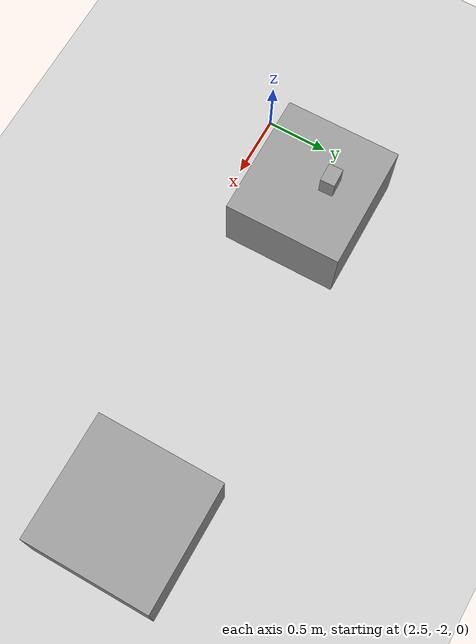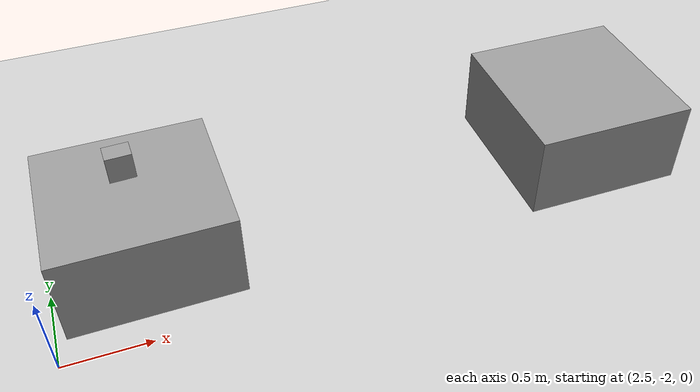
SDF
<sdf version="1.7">
 <world name="default">
  <light name="sun" type="directional">
   <pose>0 0 10 0 -0 0</pose>
   <diffuse>0.8 0.8 0.8 1</diffuse>
   <specular>0.2 0.2 0.2 1</specular>
   <attenuation>
    <range>1000</range>
    <constant>0.9</constant>
    <linear>0.01</linear>
    <quadratic>0.001</quadratic>
   </attenuation>
   <direction>-0.5 0.1 -0.9</direction>
   <spot><inner_angle>0</inner_angle><outer_angle>0</outer_angle><falloff>0</falloff></spot>
  </light>
  <model name="ground_plane">
   <static>1</static>
   <link name="link">
    <collision name="collision">
     <geometry><plane><normal>0 0 1</normal><size>100 100</size></plane></geometry>
     <surface><friction><ode><mu>100</mu><mu2>50</mu2></ode></friction></surface>
    </collision>
    <visual name="visual">
     <cast_shadows>0</cast_shadows>
     <geometry><plane><normal>0 0 1</normal><size>100 100</size></plane></geometry>
     <material>
      <script><uri>file://media/materials/scripts/gazebo.material</uri><name>Gazebo/Grey</name></script>
     </material>
    </visual>
   </link>
  </model>
  <gravity>0 0 -9.8</gravity>
  <magnetic_field>6e-06 2.3e-05 -4.2e-05</magnetic_field>
  <atmosphere type="adiabatic"/>
  <physics type="ode">
   <max_step_size>0.001</max_step_size>
   <real_time_factor>1</real_time_factor>
   <real_time_update_rate>1000</real_time_update_rate>
  </physics>
  <scene><ambient>0.4 0.4 0.4 1</ambient><background>0.7 0.7 0.7 1</background><shadows>1</shadows></scene>
  <spherical_coordinates>
   <surface_model>EARTH_WGS84</surface_model>
   <latitude_deg>0</latitude_deg>
   <longitude_deg>0</longitude_deg>
   <elevation>0</elevation>
   <heading_deg>0</heading_deg>
  </spherical_coordinates>
  <model name="unit_box">
   <pose>3.05313 -1.36143 0.271671 0 -0 0.010327</pose>
   <link name="link">
    <inertial>
     <mass>1</mass>
     <inertia>
      <ixx>0.166667</ixx>
      <ixy>0</ixy>
      <ixz>0</ixz>
      <iyy>0.166667</iyy>
      <iyz>0</iyz>
      <izz>0.166667</izz>
     </inertia>
    </inertial>
    <collision name="collision"><geometry><box><size>1 0.923665 0.543344</size></box></geometry></collision>
    <visual name="visual">
     <geometry><box><size>1 0.923665 0.543344</size></box></geometry>
     <material>
      <script><name>Gazebo/Grey</name><uri>file://media/materials/scripts/gazebo.material</uri></script>
     </material>
    </visual>
   </link>
  </model>
  <model name="unit_box-new">
   <link name="link">
    <inertial>
     <mass>0.02</mass>
     <inertia>
      <ixx>6.608e-05</ixx>
      <ixy>0</ixy>
      <ixz>0</ixz>
      <iyy>8.151e-05</iyy>
      <iyz>0</iyz>
      <izz>5.897e-05</izz>
     </inertia>
    </inertial>
    <visual name="visual">
     <geometry><box><size>0.149403 0.114281 0.163057</size></box></geometry>
     <material>
      <script><name>Gazebo/Grey</name><uri>file://media/materials/scripts/gazebo.material</uri></script>
      <shader type="pixel"><normal_map>__default__</normal_map></shader>
      <ambient>0.3 0.3 0.3 1</ambient>
      <diffuse>0.7 0.7 0.7 1</diffuse>
      <specular>0.01 0.01 0.01 1</specular>
      <emissive>0 0 0 1</emissive>
     </material>
    </visual>
    <collision name="collision">
     <geometry><box><size>0.149403 0.114281 0.163057</size></box></geometry>
     <surface>
      <friction>
       <ode><mu>1</mu><mu2>1</mu2><fdir1>0 0 0</fdir1><slip1>0</slip1><slip2>0</slip2></ode>
       <torsional>
        <coefficient>1</coefficient>
        <patch_radius>0</patch_radius>
        <surface_radius>0</surface_radius>
        <use_patch_radius>1</use_patch_radius>
        <ode><slip>0</slip></ode>
       </torsional>
      </friction>
      <bounce><restitution_coefficient>0</restitution_coefficient><threshold>1e+06</threshold></bounce>
      <contact>
       <collide_without_contact>0</collide_without_contact>
       <collide_without_contact_bitmask>1</collide_without_contact_bitmask>
       <collide_bitmask>1</collide_bitmask>
       <ode>
        <soft_cfm>0</soft_cfm>
        <soft_erp>0.2</soft_erp>
        <kp>1e+13</kp>
        <kd>1</kd>
        <max_vel>0.01</max_vel>
        <min_depth>0</min_depth>
       </ode>
       <bullet>
        <split_impulse>1</split_impulse>
        <split_impulse_penetration_threshold>-0.01</split_impulse_penetration_threshold>
        <soft_cfm>0</soft_cfm>
        <soft_erp>0.2</soft_erp>
        <kp>1e+13</kp>
        <kd>1</kd>
       </bullet>
      </contact>
     </surface>
    </collision>
   </link>
   <static>0</static>
   <pose>3.03 -1.23515 0.624864 2.6e-05 -0.000107 0.039738</pose>
  </model>
  <model name="unit_box_0">
   <pose>5.85476 -1.31051 0.267507 0 -0 0</pose>
   <link name="link">
    <inertial>
     <mass>1</mass>
     <inertia>
      <ixx>0.166667</ixx>
      <ixy>0</ixy>
      <ixz>0</ixz>
      <iyy>0.166667</iyy>
      <iyz>0</iyz>
      <izz>0.166667</izz>
     </inertia>
    </inertial>
    <collision name="collision"><geometry><box><size>1 1 0.535014</size></box></geometry></collision>
    <visual name="visual">
     <geometry><box><size>1 1 0.535014</size></box></geometry>
     <material>
      <script><name>Gazebo/Grey</name><uri>file://media/materials/scripts/gazebo.material</uri></script>
     </material>
    </visual>
   </link>
  </model>
 </world>
</sdf>
